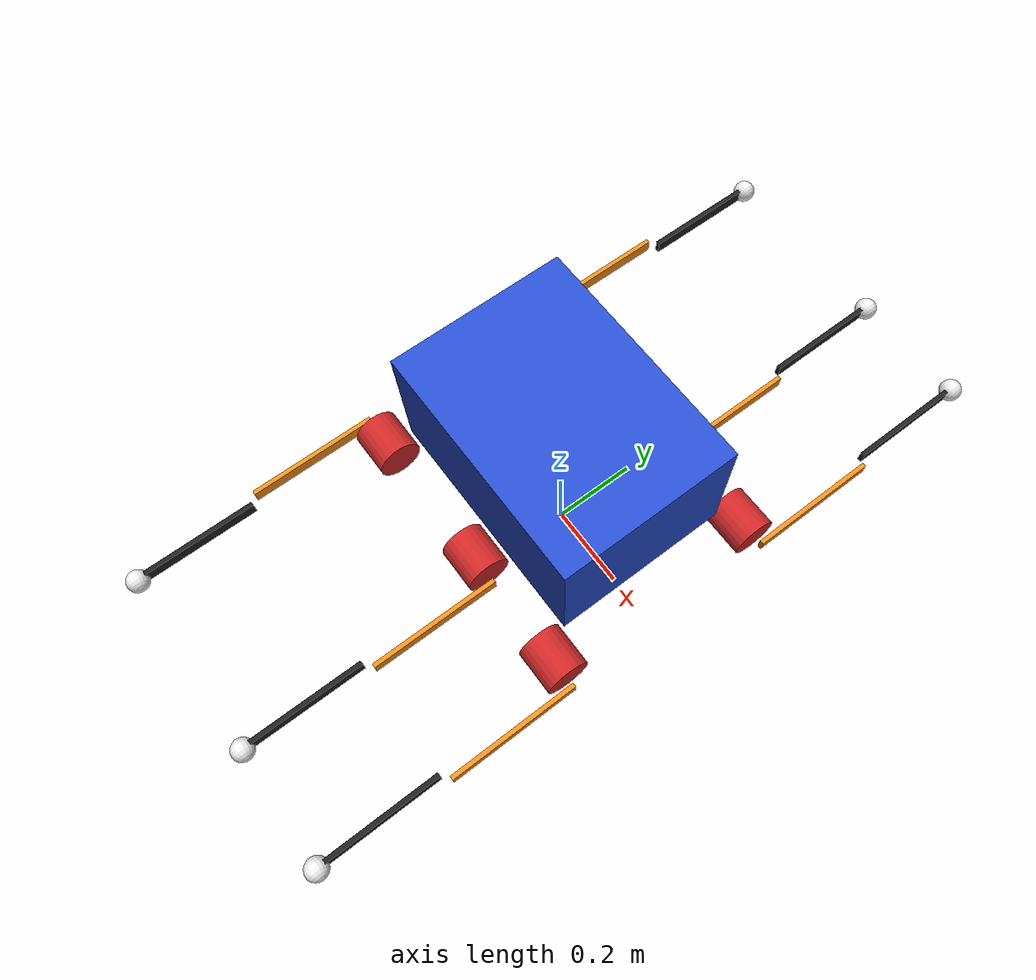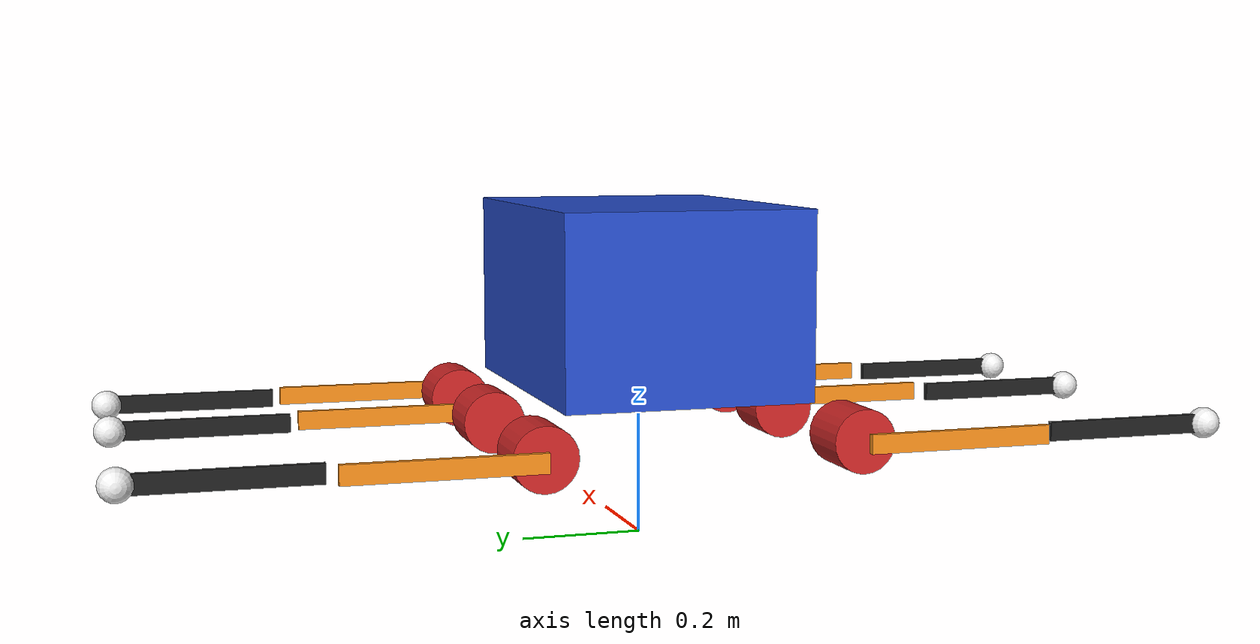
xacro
<?xml version="1.0"?>
<robot xmlns:xacro="http://www.ros.org/wiki/xacro"  name="robot">

    <!--xacro:arg name="use_ros2_control" default="true"/-->
    <xacro:arg name="sim_mode" default="false"/>
     <!-- Import Gazebo related stuff -->
    <xacro:include filename="gazebo_control.xacro"/>
     <!-- Import Leg geometry Macro -->
    <xacro:include filename="silver_leg.xacro"/>
     <!-- Import Leg control Macro -->
    <xacro:include filename="ros2_control_leg.xacro"/>
     <!-- Import ROS control -->
    <xacro:include filename="ros2_control_silver.xacro"/>
     <!-- Import Inertia Macros -->
    <xacro:include filename="inertial_macros.xacro"/>
    <!-- Import Constants -->
    <xacro:include filename="silver_constants.xacro"/>
    <!-- Import Rviz colors -->
    <xacro:include filename="colors_rviz.xacro"/>

    <!-- BASE LINK -->

    <link name = "base_link"></link>

    <!-- BODY JOINT AND LINK -->

    <joint name="body_joint" type="fixed">
        <origin xyz="0.0 0.0 0.4" rpy="0.0 0.0 0.0"/>
        <parent link="base_link"/>
        <child link="body_link"/>
    </joint>

    <link name="body_link">
        <visual>
            <origin xyz="0.0 0.0 0.0" rpy="0.0 0.0 0.0"/>
            <geometry>
                <box size="${body_link_x_dim} ${body_link_y_dim} ${body_link_z_dim}"/>
            </geometry>
            <material name="blue"/>
        </visual>
        <collision>
            <origin xyz="0.0 0.0 0.0" rpy="0.0 0.0 0.0"/>
            <geometry>
                <box size="${body_link_x_dim} ${body_link_y_dim} ${body_link_z_dim}"/>
            </geometry>
        </collision>
        <xacro:inertial_box mass="${body_link_mass}" x="${body_link_x_dim}" y ="${body_link_y_dim}" z="${body_link_z_dim}">
            <origin xyz="0.0 0 0.0"/>
        </xacro:inertial_box>
    </link>

    <!-- Body Link -->
    <gazebo reference="body_link">
      <material>Gazebo/Blue</material>
    </gazebo>

    <xacro:leg suffix="0" reflect="1" side='right' Ox="0.275" Oy="-0.2" Oz="-0.15"/>
    <xacro:leg suffix="1" reflect="1" side='right' Ox="0.0" Oy="-0.2" Oz="-0.15"/>
    <xacro:leg suffix="2" reflect="-1" side='right' Ox="-0.275" Oy="-0.2" Oz="-0.15"/>
    <xacro:leg suffix="3" reflect="-1" side='left' Ox="0.275" Oy="0.2" Oz="-0.15"/>
    <xacro:leg suffix="4" reflect="-1" side='left' Ox="0.0" Oy="0.2" Oz="-0.15"/>
    <xacro:leg suffix="5" reflect="1" side='left' Ox="-0.275" Oy="0.2" Oz="-0.15"/>

</robot>

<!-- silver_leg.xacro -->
<robot xmlns:xacro="http://www.ros.org/wiki/xacro">

    <xacro:macro name="leg" params="suffix reflect side Ox Oy Oz">

        <!-- COXA JOINT AND LINK-->

        <joint name="coxa_joint_${suffix}" type="revolute">
            <xacro:if value="${side == 'right'}">
                <origin xyz="${Ox} ${Oy} ${Oz}" rpy="0.0 0.0 0.0"/>
            </xacro:if>
            <xacro:unless value="${side == 'right'}">
                <origin xyz="${Ox} ${Oy} ${Oz}" rpy="0.0 0.0 3.14"/>
            </xacro:unless>
            <parent link="body_link"/>
            <child link="coxa_link_${suffix}"/>
            <limit effort="250.0" velocity="10.0" lower="-3.14" upper="3.14" />
            <axis xyz="0 0 1"/>
            <!--dynamics damping="10.0" friction="10.0"/-->
        </joint>

        <link name="coxa_link_${suffix}">
            <visual>
                <origin xyz="${reflect*coxa_link_Ox} ${coxa_link_Oy} ${coxa_link_Oz}" rpy="0.0 ${coxa_link_Ry} 0.0"/>
                <geometry>
                    <cylinder length="${coxa_link_length}" radius="${coxa_link_radius}"/>
                </geometry>
                <material name="red"/>
            </visual>
            <collision>
                <origin xyz="${reflect*coxa_link_Ox} ${coxa_link_Oy} ${coxa_link_Oz}" rpy="0.0 ${coxa_link_Ry} 0.0"/>
                <geometry>
                    <cylinder length="${coxa_link_length}" radius="${coxa_link_radius}"/>
                </geometry>
            </collision>
            <xacro:inertial_cylinder mass="${coxa_link_mass}" length="${coxa_link_length}" radius="${coxa_link_radius}">
                <origin xyz="${reflect*coxa_link_Ox} ${coxa_link_Oy} ${coxa_link_Oz}" rpy="0.0 ${coxa_link_Ry} 0.0"/>
            </xacro:inertial_cylinder>
        </link>

        <gazebo reference="coxa_link_${suffix}">
            <material>Gazebo/Blue</material>
        </gazebo>

        <!-- FEMUR JOINT AND LINK-->

        <joint name="femur_joint_${suffix}" type="revolute">
            <origin xyz="${reflect*femur_joint_Ox} ${femur_joint_Oy} ${femur_joint_Oz}" rpy="0.0 ${femur_joint_Ry} 0.0"/>
            <parent link="coxa_link_${suffix}"/>
            <child link="femur_link_${suffix}"/>
            <limit effort="250.0" velocity="10.0" lower="-3.14" upper="3.14" />
            <axis xyz="0 0 1"/>
            <!--dynamics damping="10.0" friction="10.0"/-->
        </joint>

        <link name="femur_link_${suffix}">
            <visual>
                <origin xyz="${femur_link_Ox} ${femur_link_Oy} ${reflect*femur_link_Oz}" rpy="0.0 0.0 0.0"/>
                <geometry>
                    <box size="${femur_link_dx} ${femur_link_dy} ${femur_link_dz}"/>
                </geometry>
                <material name="orange"/>
            </visual>
            <collision>
                <origin xyz="${femur_link_Ox} ${femur_link_Oy} ${reflect*femur_link_Oz}" rpy="0.0 0.0 0.0"/>
                <geometry>
                    <box size="${femur_link_dx} ${femur_link_dy} ${femur_link_dz}"/>
                </geometry>
            </collision>
            <xacro:inertial_box mass="${femur_link_mass}" x="${femur_link_dx}" y="${femur_link_dy}" z='${femur_link_dz}'>
                <origin xyz="${femur_link_Ox} ${femur_link_Oy} ${reflect*femur_link_Oz}" rpy="0.0 0.0 0.0"/>
            </xacro:inertial_box>
        </link>

        <gazebo reference="femur_link_${suffix}">
            <material>Gazebo/Orange</material>
        </gazebo>

        <!-- TIBIA JOINT AND LINK -->
        <joint name="tibia_joint_${suffix}" type="revolute">
            <origin xyz="${tibia_joint_Ox} ${tibia_joint_Oy} ${reflect*tibia_joint_Oz}" rpy="0.0 ${tibia_link_Ry} 0.0"/>
            <parent link="femur_link_${suffix}"/>
            <child link="tibia_link_${suffix}"/>
            <limit effort="250.0" velocity="10.0" lower="-3.14" upper="3.14" />
            <axis xyz="0 0 1"/>
            <!--dynamics damping="10.0" friction="10.0"/-->
        </joint>

        <link name="tibia_link_${suffix}">
            <visual>
                <origin xyz="${tibia_link_Ox} ${tibia_link_Oy} ${tibia_link_Oz}" rpy="0.0 0.0 0.0"/>
                <geometry>
                    <box size="${tibia_link_dx} ${tibia_link_dy} ${tibia_link_dz}"/>
                </geometry>
                <material name="black"/>
            </visual>
            <collision>
                <origin xyz="${tibia_link_Ox} ${tibia_link_Oy} ${tibia_link_Oz}" rpy="0.0 0.0 0.0"/>
                <geometry>
                    <box size="${tibia_link_dx} ${tibia_link_dy} ${tibia_link_dz}"/>
                </geometry>
            </collision>
            <xacro:inertial_box mass="${tibia_link_mass}" x="${tibia_link_dx}" y="${tibia_link_dy}" z="${tibia_link_dz}">
                <origin xyz="${tibia_link_Ox} ${tibia_link_Oy} ${tibia_link_Oz}" rpy="0.0 0.0 0.0"/>
            </xacro:inertial_box>
        </link>

        <gazebo reference="tibia_link_${suffix}">
            <material>Gazebo/Black</material>
        </gazebo>

        <!-- FOOT JOINT AND LINK -->
        <joint name="foot_joint_${suffix}" type="fixed">
            <origin xyz="${foot_joint_Ox} ${foot_joint_Oy} ${foot_joint_Oz}" rpy="0.0 0.0 0.0"/>
            <parent link="tibia_link_${suffix}"/>
            <child link="foot_link_${suffix}"/>
        </joint>

        <link name="foot_link_${suffix}">
            <visual>
                <origin xyz="${foot_link_Ox} ${foot_link_Oy} ${foot_link_Oz}" rpy="0.0 0.0 0.0"/>
                <geometry>
                    <sphere radius="${foot_radius}"/>
                    <!--box size="0.1 0.05 0.05"/-->
                </geometry>
                <material name="white"/>
            </visual>
            <collision>
                <origin xyz="${foot_link_Ox} ${foot_link_Oy} ${foot_link_Oz}" rpy="0.0 0.0 0.0"/>
                <geometry>
                    <sphere radius="${foot_radius}"/>
                    <!--box size="0.1 0.05 0.05"/-->
                </geometry>
            </collision>
            <xacro:inertial_sphere mass="${foot_mass}" radius="${foot_radius}">
                <origin xyz="${foot_link_Ox} ${foot_link_Oy} ${foot_link_Oz}" rpy="0.0 0.0 0.0"/>
            </xacro:inertial_sphere>
        </link>

        <gazebo reference="foot_link_${suffix}">
            <material>Gazebo/White</material>
        </gazebo>
    </xacro:macro>
</robot>

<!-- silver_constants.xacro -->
<robot xmlns:xacro="http://www.ros.org/wiki/xacro" >

    <!-- Constant parameters -->
    <xacro:property name="body_link_mass" value="140.0" /> <!-- Kg -->
    <xacro:property name="body_link_height" value="1.0" />
    <xacro:property name="body_link_x_dim" value="0.55" />
    <xacro:property name="body_link_y_dim" value="0.4" />
    <xacro:property name="body_link_z_dim" value="0.3" />

    <xacro:property name="coxa_link_mass" value="0.301" /> <!-- Kg -->
    <xacro:property name="coxa_joint_Ox" value="0.0" />
    <xacro:property name="coxa_joint_Oy" value="0.0" />
    <xacro:property name="coxa_joint_Oz" value="0.0" />
    <xacro:property name="coxa_link_Ox" value="0.03" />
    <xacro:property name="coxa_link_Oy" value="-0.05" />
    <xacro:property name="coxa_link_Oz" value="-0.05" />
    <xacro:property name="coxa_link_Ry" value="1.57" /> <!-- rad -->
    <xacro:property name="coxa_link_length" value="0.1" />
    <xacro:property name="coxa_link_radius" value="0.05" />

    <xacro:property name="femur_link_mass" value="0.501" /> <!-- Kg -->
    <xacro:property name="femur_joint_Ox" value="0.07" />
    <xacro:property name="femur_joint_Oy" value="-0.05" />
    <xacro:property name="femur_joint_Oz" value="-0.05" />
    <xacro:property name="femur_joint_Ry" value="-1.57" /> <!-- rad -->
    <xacro:property name="femur_link_Ox" value="0.0" />
    <xacro:property name="femur_link_Oy" value="-0.15" />
    <xacro:property name="femur_link_Oz" value="-0.03" />
    <xacro:property name="femur_link_dx" value="0.03" />
    <xacro:property name="femur_link_dy" value="0.3" />
    <xacro:property name="femur_link_dz" value="0.01" />

    <xacro:property name="tibia_link_mass" value="0.401" /> <!-- Kg -->
    <xacro:property name="tibia_joint_Ox" value="0.0" />
    <xacro:property name="tibia_joint_Oy" value="-0.3" />
    <xacro:property name="tibia_joint_Oz" value="-0.01" />
    <xacro:property name="tibia_link_Ry" value="3.14" /> <!-- rad -->
    <xacro:property name="tibia_link_Ox" value="0.0" />
    <xacro:property name="tibia_link_Oy" value="-0.15" />
    <xacro:property name="tibia_link_Oz" value="0.0" />
    <xacro:property name="tibia_link_dx" value="0.03" />
    <xacro:property name="tibia_link_dy" value="-0.27" />
    <xacro:property name="tibia_link_dz" value="0.01" />

    <xacro:property name="foot_mass" value="0.001" /> <!-- Kg -->
    <xacro:property name="foot_radius" value="0.025" />
    <xacro:property name="foot_joint_Ox" value="0.0" />
    <xacro:property name="foot_joint_Oy" value="-0.295" />
    <xacro:property name="foot_joint_Oz" value="0.0" />
    <xacro:property name="foot_joint_Rz" value="0.0" /> <!-- rad -->
    <xacro:property name="foot_link_Ox" value="0.0" />
    <xacro:property name="foot_link_Oy" value="0.0" />
    <xacro:property name="foot_link_Oz" value="0.0" />
</robot>
